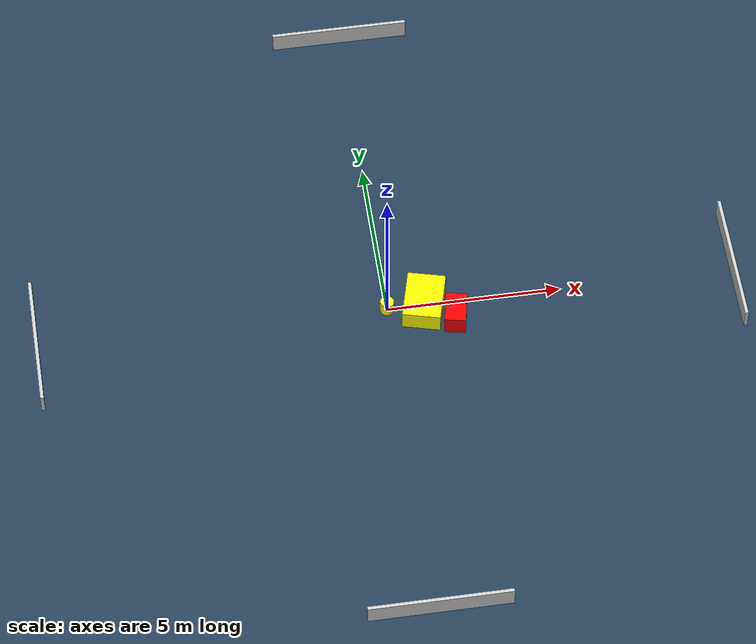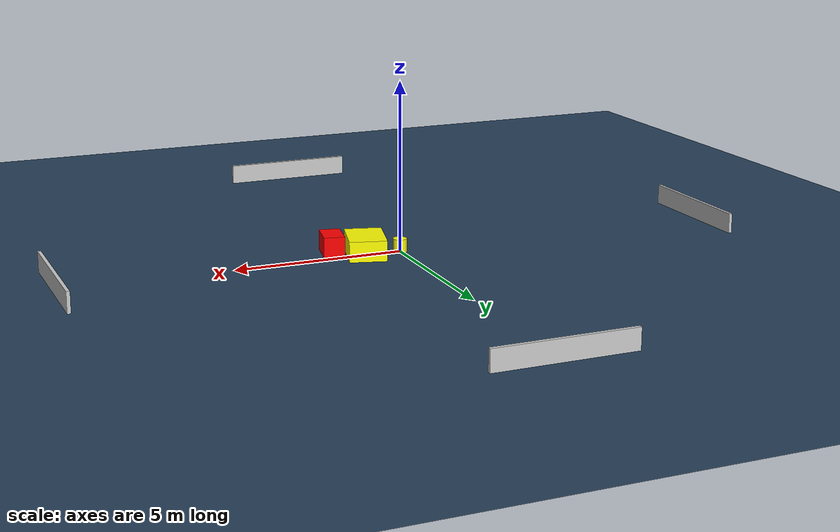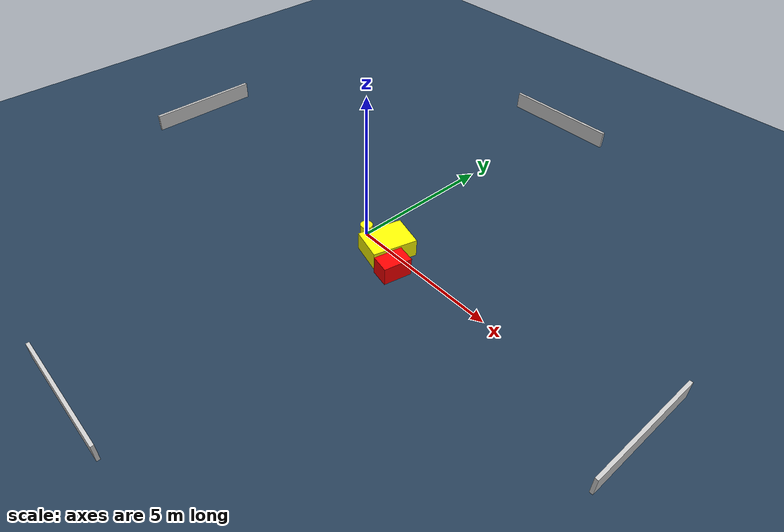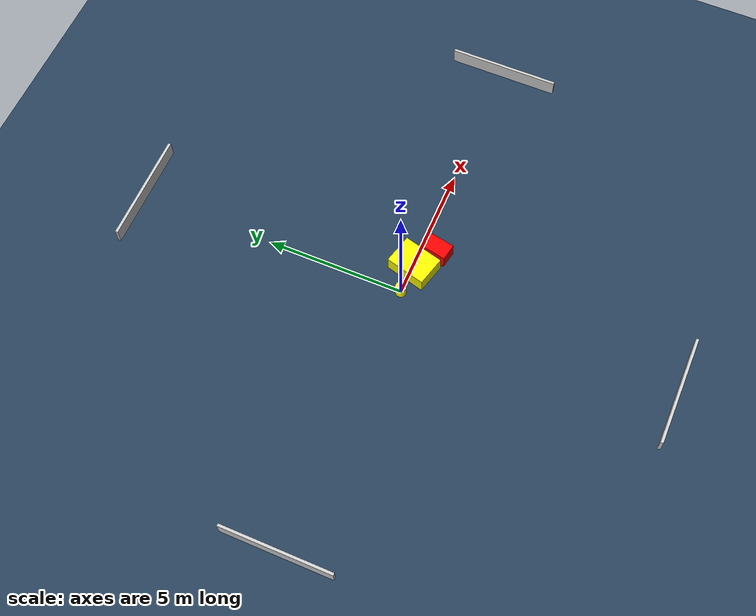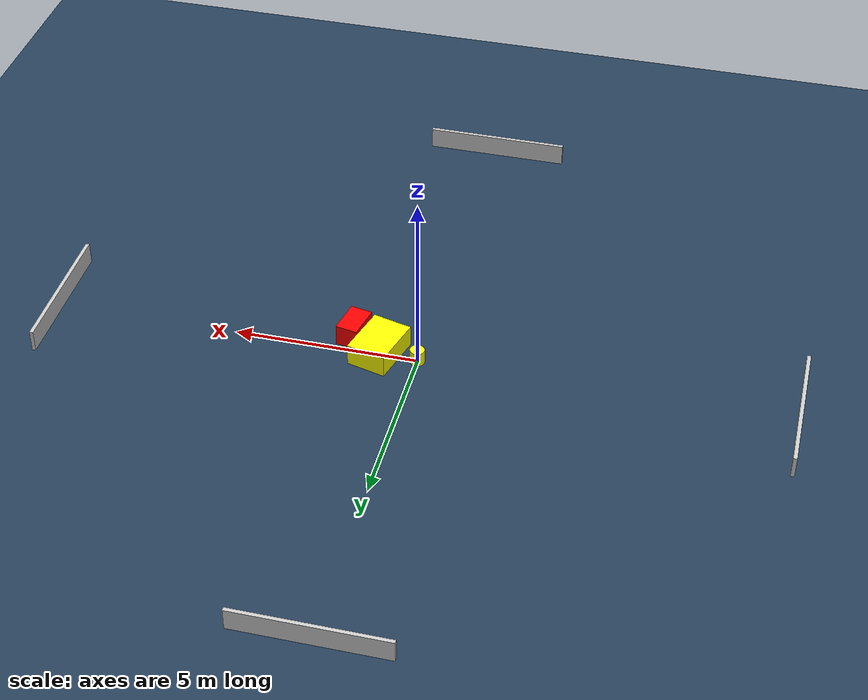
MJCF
<?xml version="1.0" ?>
<mujoco model="generated_environment">
  <option timestep="0.01" integrator="RK4" cone="elliptic"/>
  <default>
    <geom density="1"/>
  </default>
  <asset>
    <texture builtin="gradient" height="3072" name="skybox" rgb1="0.3 0.5 0.7" rgb2="0 0 0" type="skybox" width="512"/>
    <texture builtin="checker" height="300" name="groundplane" rgb1="0.2 0.3 0.4" rgb2="0.1 0.2 0.3" type="2d" width="300"/>
    <material name="groundplane" reflectance="0.2" texrepeat="5 5" texture="groundplane"/>
  </asset>
  <worldbody>
    <light dir="0 0 -1" directional="true" pos="0 0 1.5"/>
    <geom condim="3" friction="0.5 0.005 0.001" material="groundplane" name="floor" pos="0 0 0" size="0 0 0.05" type="plane"/>
    <body name="walls">
      <geom name="wall_1" condim="4" pos="-10.0 0.0 0.3" rgba="0.800000011920929 0.800000011920929 0.800000011920929 1.0" size="0.05 2.0 0.3" type="box"/>
      <geom name="wall_2" condim="4" pos="10.0 0.0 0.3" rgba="0.800000011920929 0.800000011920929 0.800000011920929 1.0" size="0.05 2.0 0.3" type="box"/>
      <geom name="wall_3" condim="4" pos="0.0 -10.0 0.3" rgba="0.800000011920929 0.800000011920929 0.800000011920929 1.0" size="2.0 0.05 0.3" type="box"/>
      <geom name="wall_4" condim="4" pos="0.0 10.0 0.3" rgba="0.800000011920929 0.800000011920929 0.800000011920929 1.0" size="2.0 0.05 0.3" type="box"/>
    </body>
    <body name="robot">
      <joint name="joint_x" type="slide" pos="0 0 0" axis="1 0 0"/>
      <joint name="joint_y" type="slide" pos="0 0 0" axis="0 1 0"/>
      <geom name="robot" type="cylinder" pos="0.0 0.0 0.2" size="0.2 0.2 0.0" mass="5.0" friction="1.0 0.005 0.0001" condim="4" rgba="1.0 1.0 0.0 1.0"/>
    </body>
    <body name="obstacle_1_movable">
      <geom name="obstacle_1_movable" condim="4" pos="1.0516864029430404 -0.061654214248908414 0.3" euler="0 0 165.23863930017995" friction="0.0 0.005 0.001" rgba="1.0 1.0 0.0 1.0" size="0.5457356457287416 0.7361433361920071 0.3" type="box" mass="0.1"/>
      <joint type="free"/>
    </body>
    <body name="obstacle_2_static">
      <geom name="obstacle_2_static" condim="4" pos="1.8824835102125883 -0.589782945650862 0.3" euler="0 0 258.8975888771925" friction="0.0 0.005 0.001" rgba="1.0 0.0 0.0 1.0" size="0.4702440980188021 0.30383423181906444 0.3" type="box"/>
    </body>
  </worldbody>
  <actuator>
    <motor name="actuator_x" joint="joint_x" gear="1" ctrlrange="-1 1"/>
    <motor name="actuator_y" joint="joint_y" gear="1" ctrlrange="-1 1"/>
  </actuator>
</mujoco>
